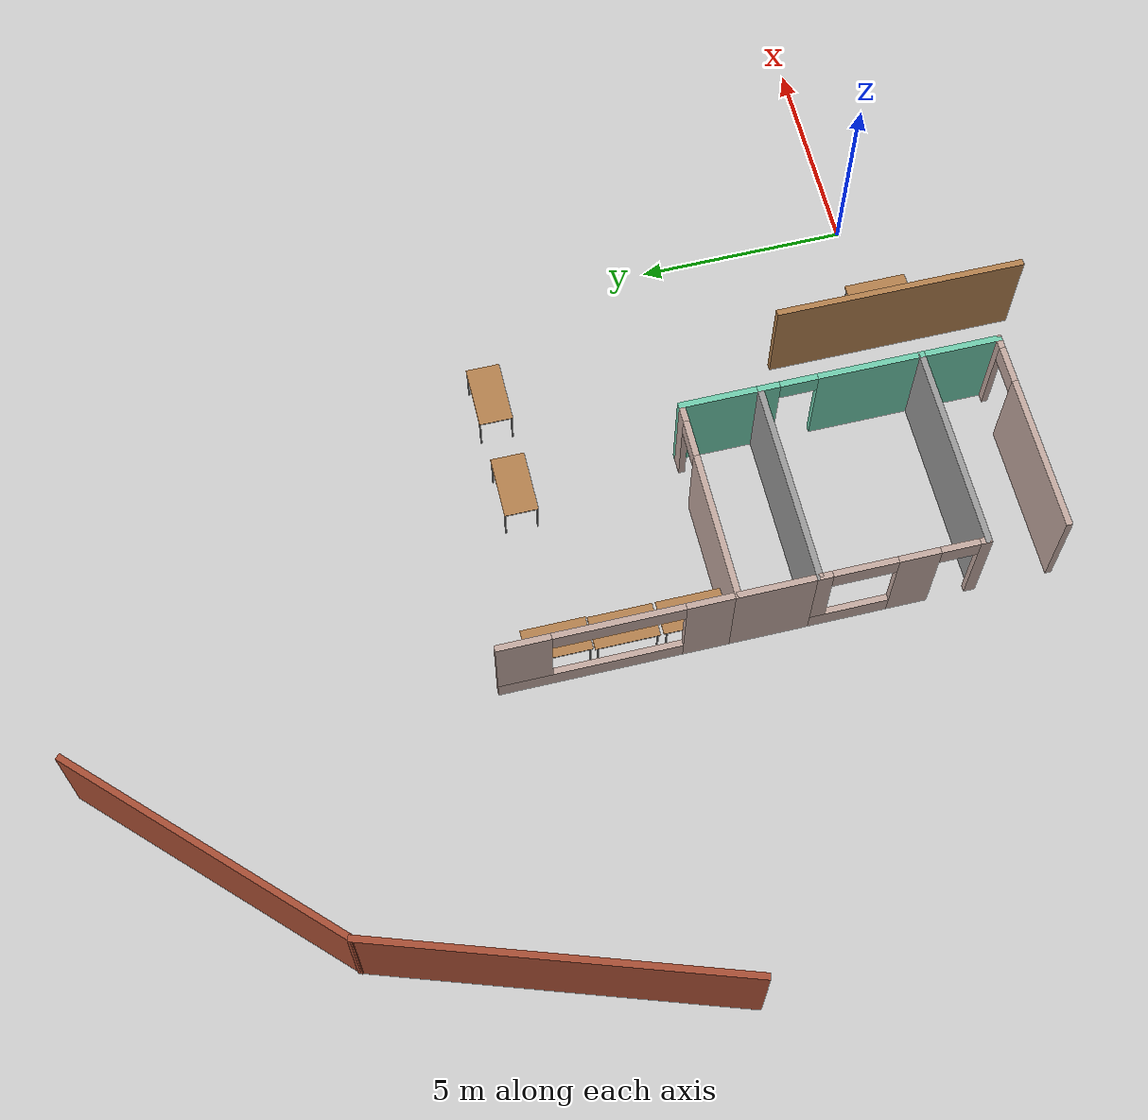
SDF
<sdf version="1.6">
 <world name="default">
  <model name="ground_plane">
   <static>1</static>
   <link name="link">
    <collision name="collision">
     <geometry><plane><normal>0 0 1</normal><size>100 100</size></plane></geometry>
     <surface><friction><ode><mu>100</mu><mu2>50</mu2></ode></friction></surface>
    </collision>
    <visual name="visual">
     <cast_shadows>0</cast_shadows>
     <geometry><plane><normal>0 0 1</normal><size>100 100</size></plane></geometry>
     <material>
      <script><uri>file://media/materials/scripts/gazebo.material</uri><name>Gazebo/Grey</name></script>
     </material>
    </visual>
   </link>
  </model>
  <model name="buildingv2">
   <pose>0.458303 2.11352 0 0 -0 0</pose>
   <link name="Wall_102">
    <collision name="Wall_102_Collision">
     <geometry><box><size>7.5 0.15 2.5</size></box></geometry>
     <pose>0 0 1.25 0 -0 0</pose>
    </collision>
    <visual name="Wall_102_Visual">
     <pose>0 0 1.25 0 -0 0</pose>
     <geometry><box><size>7.5 0.15 2.5</size></box></geometry>
     <material>
      <script><uri>file://media/materials/scripts/gazebo.material</uri><name>Gazebo/Bricks</name></script>
      <ambient>1 1 1 1</ambient>
     </material>
     <meta><layer>0</layer></meta>
    </visual>
    <pose>-13.3137 15.568 0 0 0 -2.35619</pose>
   </link>
   <link name="Wall_103">
    <collision name="Wall_103_Collision">
     <geometry><box><size>8.52644 0.15 2.5</size></box></geometry>
     <pose>0 0 1.25 0 -0 0</pose>
    </collision>
    <visual name="Wall_103_Visual">
     <pose>0 0 1.25 0 -0 0</pose>
     <geometry><box><size>8.52644 0.15 2.5</size></box></geometry>
     <material>
      <script><uri>file://media/materials/scripts/gazebo.material</uri><name>Gazebo/Bricks</name></script>
      <ambient>1 1 1 1</ambient>
     </material>
     <meta><layer>0</layer></meta>
    </visual>
    <pose>-17.2612 9.00429 0 0 0 -1.89871</pose>
   </link>
   <link name="Wall_47">
    <collision name="Wall_47_Collision">
     <geometry><box><size>6 0.15 2.5</size></box></geometry>
     <pose>0 0 1.25 0 -0 0</pose>
    </collision>
    <visual name="Wall_47_Visual">
     <pose>0 0 1.25 0 -0 0</pose>
     <geometry><box><size>6 0.15 2.5</size></box></geometry>
     <material>
      <script><uri>file://media/materials/scripts/gazebo.material</uri><name>Gazebo/Wood</name></script>
      <ambient>1 1 1 1</ambient>
     </material>
     <meta><layer>0</layer></meta>
    </visual>
    <pose>-3.72628 -2.39842 0 0 0 -1.5708</pose>
   </link>
   <link name="Wall_53">
    <collision name="Wall_53_Collision">
     <geometry><box><size>2 0.15 2.5</size></box></geometry>
     <pose>0 0 1.25 0 -0 0</pose>
    </collision>
    <visual name="Wall_53_Visual">
     <pose>0 0 1.25 0 -0 0</pose>
     <geometry><box><size>2 0.15 2.5</size></box></geometry>
     <material>
      <script><uri>file://media/materials/scripts/gazebo.material</uri><name>Gazebo/Grey</name></script>
      <ambient>0.435294 0.796078 0.67451 1</ambient>
     </material>
     <meta><layer>0</layer></meta>
    </visual>
    <pose>-5.57628 2.45158 0 0 -0 1.5708</pose>
   </link>
   <link name="Wall_54">
    <pose>-8.00128 3.37658 0 0 -0 3.14159</pose>
    <visual name="Wall_54_Visual_0">
     <pose>-2.2489 0 1.25 0 -0 0</pose>
     <geometry><box><size>0.502202 0.15 2.5</size></box></geometry>
     <material>
      <script><uri>file://media/materials/scripts/gazebo.material</uri><name>Gazebo/Grey</name></script>
      <ambient>0.760784 0.662745 0.627451 1</ambient>
     </material>
     <meta><layer>0</layer></meta>
    </visual>
    <collision name="Wall_54_Collision_0">
     <geometry><box><size>0.502202 0.15 2.5</size></box></geometry>
     <pose>-2.2489 0 1.25 0 -0 0</pose>
    </collision>
    <visual name="Wall_54_Visual_1">
     <pose>0.701101 0 1.25 0 -0 0</pose>
     <geometry><box><size>3.5978 0.15 2.5</size></box></geometry>
     <material>
      <script><uri>file://media/materials/scripts/gazebo.material</uri><name>Gazebo/Grey</name></script>
      <ambient>0.760784 0.662745 0.627451 1</ambient>
     </material>
     <meta><layer>0</layer></meta>
    </visual>
    <collision name="Wall_54_Collision_1">
     <geometry><box><size>3.5978 0.15 2.5</size></box></geometry>
     <pose>0.701101 0 1.25 0 -0 0</pose>
    </collision>
    <visual name="Wall_54_Visual_2">
     <pose>-1.5478 0 2.25 0 -0 0</pose>
     <geometry><box><size>0.9 0.15 0.5</size></box></geometry>
     <material>
      <script><uri>file://media/materials/scripts/gazebo.material</uri><name>Gazebo/Grey</name></script>
      <ambient>0.760784 0.662745 0.627451 1</ambient>
     </material>
     <meta><layer>0</layer></meta>
    </visual>
    <collision name="Wall_54_Collision_2">
     <geometry><box><size>0.9 0.15 0.5</size></box></geometry>
     <pose>-1.5478 0 2.25 0 -0 0</pose>
    </collision>
   </link>
   <link name="Wall_55">
    <collision name="Wall_55_Collision">
     <geometry><box><size>2 0.15 2.5</size></box></geometry>
     <pose>0 0 1.25 0 -0 0</pose>
    </collision>
    <visual name="Wall_55_Visual">
     <pose>0 0 1.25 0 -0 0</pose>
     <geometry><box><size>2 0.15 2.5</size></box></geometry>
     <material>
      <script><uri>file://media/materials/scripts/gazebo.material</uri><name>Gazebo/Grey</name></script>
      <ambient>0.760784 0.662745 0.627451 1</ambient>
     </material>
     <meta><layer>0</layer></meta>
    </visual>
    <pose>-10.4263 2.45158 0 0 0 -1.5708</pose>
   </link>
   <link name="Wall_56">
    <collision name="Wall_56_Collision">
     <geometry><box><size>5 0.15 2.5</size></box></geometry>
     <pose>0 0 1.25 0 -0 0</pose>
    </collision>
    <visual name="Wall_56_Visual">
     <pose>0 0 1.25 0 -0 0</pose>
     <geometry><box><size>5 0.15 2.5</size></box></geometry>
     <material>
      <script><uri>file://media/materials/scripts/gazebo.material</uri><name>Gazebo/Grey</name></script>
      <ambient>1 1 1 1</ambient>
     </material>
     <meta><layer>0</layer></meta>
    </visual>
    <pose>-8.00128 1.52658 0 0 -0 0</pose>
   </link>
   <link name="Wall_57">
    <pose>-5.57628 -0.398423 0 0 0 -1.5708</pose>
    <visual name="Wall_57_Visual_0">
     <pose>-1.72998 0 1.25 0 -0 0</pose>
     <geometry><box><size>0.54004 0.15 2.5</size></box></geometry>
     <material>
      <script><uri>file://media/materials/scripts/gazebo.material</uri><name>Gazebo/Grey</name></script>
      <ambient>0.435294 0.796078 0.67451 1</ambient>
     </material>
     <meta><layer>0</layer></meta>
    </visual>
    <collision name="Wall_57_Collision_0">
     <geometry><box><size>0.54004 0.15 2.5</size></box></geometry>
     <pose>-1.72998 0 1.25 0 -0 0</pose>
    </collision>
    <visual name="Wall_57_Visual_1">
     <pose>0.72002 0 1.25 0 -0 0</pose>
     <geometry><box><size>2.55996 0.15 2.5</size></box></geometry>
     <material>
      <script><uri>file://media/materials/scripts/gazebo.material</uri><name>Gazebo/Grey</name></script>
      <ambient>0.435294 0.796078 0.67451 1</ambient>
     </material>
     <meta><layer>0</layer></meta>
    </visual>
    <collision name="Wall_57_Collision_1">
     <geometry><box><size>2.55996 0.15 2.5</size></box></geometry>
     <pose>0.72002 0 1.25 0 -0 0</pose>
    </collision>
    <visual name="Wall_57_Visual_2">
     <pose>-1.00996 0 2.25 0 -0 0</pose>
     <geometry><box><size>0.9 0.15 0.5</size></box></geometry>
     <material>
      <script><uri>file://media/materials/scripts/gazebo.material</uri><name>Gazebo/Grey</name></script>
      <ambient>0.435294 0.796078 0.67451 1</ambient>
     </material>
     <meta><layer>0</layer></meta>
    </visual>
    <collision name="Wall_57_Collision_2">
     <geometry><box><size>0.9 0.15 0.5</size></box></geometry>
     <pose>-1.00996 0 2.25 0 -0 0</pose>
    </collision>
   </link>
   <link name="Wall_58">
    <collision name="Wall_58_Collision">
     <geometry><box><size>5 0.15 2.5</size></box></geometry>
     <pose>0 0 1.25 0 -0 0</pose>
    </collision>
    <visual name="Wall_58_Visual">
     <pose>0 0 1.25 0 -0 0</pose>
     <geometry><box><size>5 0.15 2.5</size></box></geometry>
     <material>
      <script><uri>file://media/materials/scripts/gazebo.material</uri><name>Gazebo/Grey</name></script>
      <ambient>1 1 1 1</ambient>
     </material>
     <meta><layer>0</layer></meta>
    </visual>
    <pose>-8.00128 -2.32342 0 0 -0 3.14159</pose>
   </link>
   <link name="Wall_59">
    <pose>-10.4263 -0.398423 0 0 -0 1.5708</pose>
    <visual name="Wall_59_Visual_0">
     <pose>-1.86607 0 1.25 0 -0 0</pose>
     <geometry><box><size>0.267859 0.15 2.5</size></box></geometry>
     <material>
      <script><uri>file://media/materials/scripts/gazebo.material</uri><name>Gazebo/Grey</name></script>
      <ambient>0.760784 0.662745 0.627451 1</ambient>
     </material>
     <meta><layer>0</layer></meta>
    </visual>
    <collision name="Wall_59_Collision_0">
     <geometry><box><size>0.267859 0.15 2.5</size></box></geometry>
     <pose>-1.86607 0 1.25 0 -0 0</pose>
    </collision>
    <visual name="Wall_59_Visual_1">
     <pose>-0.347691 0 1.25 0 -0 0</pose>
     <geometry><box><size>0.9689 0.15 2.5</size></box></geometry>
     <material>
      <script><uri>file://media/materials/scripts/gazebo.material</uri><name>Gazebo/Grey</name></script>
      <ambient>0.760784 0.662745 0.627451 1</ambient>
     </material>
     <meta><layer>0</layer></meta>
    </visual>
    <collision name="Wall_59_Collision_1">
     <geometry><box><size>0.9689 0.15 2.5</size></box></geometry>
     <pose>-0.347691 0 1.25 0 -0 0</pose>
    </collision>
    <visual name="Wall_59_Visual_2">
     <pose>1.06838 0 0.25 0 -0 0</pose>
     <geometry><box><size>1.86324 0.15 0.5</size></box></geometry>
     <material>
      <script><uri>file://media/materials/scripts/gazebo.material</uri><name>Gazebo/Grey</name></script>
      <ambient>0.760784 0.662745 0.627451 1</ambient>
     </material>
     <meta><layer>0</layer></meta>
    </visual>
    <collision name="Wall_59_Collision_2">
     <geometry><box><size>1.86324 0.15 0.5</size></box></geometry>
     <pose>1.06838 0 0.25 0 -0 0</pose>
    </collision>
    <visual name="Wall_59_Visual_3">
     <pose>1.81838 0 1.5 0 -0 0</pose>
     <geometry><box><size>0.363241 0.15 2</size></box></geometry>
     <material>
      <script><uri>file://media/materials/scripts/gazebo.material</uri><name>Gazebo/Grey</name></script>
      <ambient>0.760784 0.662745 0.627451 1</ambient>
     </material>
     <meta><layer>0</layer></meta>
    </visual>
    <collision name="Wall_59_Collision_3">
     <geometry><box><size>0.363241 0.15 2</size></box></geometry>
     <pose>1.81838 0 1.5 0 -0 0</pose>
    </collision>
    <visual name="Wall_59_Visual_4">
     <pose>-1.28214 0 2.25 0 -0 0</pose>
     <geometry><box><size>0.9 0.15 0.5</size></box></geometry>
     <material>
      <script><uri>file://media/materials/scripts/gazebo.material</uri><name>Gazebo/Grey</name></script>
      <ambient>0.760784 0.662745 0.627451 1</ambient>
     </material>
     <meta><layer>0</layer></meta>
    </visual>
    <collision name="Wall_59_Collision_4">
     <geometry><box><size>0.9 0.15 0.5</size></box></geometry>
     <pose>-1.28214 0 2.25 0 -0 0</pose>
    </collision>
    <visual name="Wall_59_Visual_5">
     <pose>0.886759 0 2.25 0 -0 0</pose>
     <geometry><box><size>1.5 0.15 0.5</size></box></geometry>
     <material>
      <script><uri>file://media/materials/scripts/gazebo.material</uri><name>Gazebo/Grey</name></script>
      <ambient>0.760784 0.662745 0.627451 1</ambient>
     </material>
     <meta><layer>0</layer></meta>
    </visual>
    <collision name="Wall_59_Collision_5">
     <geometry><box><size>1.5 0.15 0.5</size></box></geometry>
     <pose>0.886759 0 2.25 0 -0 0</pose>
    </collision>
   </link>
   <link name="Wall_86">
    <collision name="Wall_86_Collision">
     <geometry><box><size>2 0.15 2.5</size></box></geometry>
     <pose>0 0 1.25 0 -0 0</pose>
    </collision>
    <visual name="Wall_86_Visual">
     <pose>0 0 1.25 0 -0 0</pose>
     <geometry><box><size>2 0.15 2.5</size></box></geometry>
     <material>
      <script><uri>file://media/materials/scripts/gazebo.material</uri><name>Gazebo/Grey</name></script>
      <ambient>0.435294 0.796078 0.67451 1</ambient>
     </material>
     <meta><layer>0</layer></meta>
    </visual>
    <pose>-5.57628 -3.24842 0 0 0 -1.5708</pose>
   </link>
   <link name="Wall_87">
    <pose>-8.00128 -4.17342 0 0 -0 3.14159</pose>
    <visual name="Wall_87_Visual_0">
     <pose>-2.3305 0 1.25 0 -0 0</pose>
     <geometry><box><size>0.339006 0.15 2.5</size></box></geometry>
     <material>
      <script><uri>file://media/materials/scripts/gazebo.material</uri><name>Gazebo/Grey</name></script>
      <ambient>0.760784 0.662745 0.627451 1</ambient>
     </material>
     <meta><layer>0</layer></meta>
    </visual>
    <collision name="Wall_87_Collision_0">
     <geometry><box><size>0.339006 0.15 2.5</size></box></geometry>
     <pose>-2.3305 0 1.25 0 -0 0</pose>
    </collision>
    <visual name="Wall_87_Visual_1">
     <pose>0.619503 0 1.25 0 -0 0</pose>
     <geometry><box><size>3.76099 0.15 2.5</size></box></geometry>
     <material>
      <script><uri>file://media/materials/scripts/gazebo.material</uri><name>Gazebo/Grey</name></script>
      <ambient>0.760784 0.662745 0.627451 1</ambient>
     </material>
     <meta><layer>0</layer></meta>
    </visual>
    <collision name="Wall_87_Collision_1">
     <geometry><box><size>3.76099 0.15 2.5</size></box></geometry>
     <pose>0.619503 0 1.25 0 -0 0</pose>
    </collision>
    <visual name="Wall_87_Visual_2">
     <pose>-1.71099 0 2.25 0 -0 0</pose>
     <geometry><box><size>0.9 0.15 0.5</size></box></geometry>
     <material>
      <script><uri>file://media/materials/scripts/gazebo.material</uri><name>Gazebo/Grey</name></script>
      <ambient>0.760784 0.662745 0.627451 1</ambient>
     </material>
     <meta><layer>0</layer></meta>
    </visual>
    <collision name="Wall_87_Collision_2">
     <geometry><box><size>0.9 0.15 0.5</size></box></geometry>
     <pose>-1.71099 0 2.25 0 -0 0</pose>
    </collision>
   </link>
   <link name="Wall_95">
    <pose>-10.4263 6.05158 0 0 -0 1.5708</pose>
    <visual name="Wall_95_Visual_0">
     <pose>-2.12974 0 1.25 0 -0 0</pose>
     <geometry><box><size>1.24051 0.15 2.5</size></box></geometry>
     <material>
      <script><uri>file://media/materials/scripts/gazebo.material</uri><name>Gazebo/Grey</name></script>
      <ambient>0.760784 0.662745 0.627451 1</ambient>
     </material>
     <meta><layer>0</layer></meta>
    </visual>
    <collision name="Wall_95_Collision_0">
     <geometry><box><size>1.24051 0.15 2.5</size></box></geometry>
     <pose>-2.12974 0 1.25 0 -0 0</pose>
    </collision>
    <visual name="Wall_95_Visual_1">
     <pose>0.620257 0 0.25 0 -0 0</pose>
     <geometry><box><size>4.25949 0.15 0.5</size></box></geometry>
     <material>
      <script><uri>file://media/materials/scripts/gazebo.material</uri><name>Gazebo/Grey</name></script>
      <ambient>0.760784 0.662745 0.627451 1</ambient>
     </material>
     <meta><layer>0</layer></meta>
    </visual>
    <collision name="Wall_95_Collision_1">
     <geometry><box><size>4.25949 0.15 0.5</size></box></geometry>
     <pose>0.620257 0 0.25 0 -0 0</pose>
    </collision>
    <visual name="Wall_95_Visual_2">
     <pose>2.12026 0 1.5 0 -0 0</pose>
     <geometry><box><size>1.25949 0.15 2</size></box></geometry>
     <material>
      <script><uri>file://media/materials/scripts/gazebo.material</uri><name>Gazebo/Grey</name></script>
      <ambient>0.760784 0.662745 0.627451 1</ambient>
     </material>
     <meta><layer>0</layer></meta>
    </visual>
    <collision name="Wall_95_Collision_2">
     <geometry><box><size>1.25949 0.15 2</size></box></geometry>
     <pose>2.12026 0 1.5 0 -0 0</pose>
    </collision>
    <visual name="Wall_95_Visual_3">
     <pose>-0.009486 0 2.25 0 -0 0</pose>
     <geometry><box><size>3 0.15 0.5</size></box></geometry>
     <material>
      <script><uri>file://media/materials/scripts/gazebo.material</uri><name>Gazebo/Grey</name></script>
      <ambient>0.760784 0.662745 0.627451 1</ambient>
     </material>
     <meta><layer>0</layer></meta>
    </visual>
    <collision name="Wall_95_Collision_3">
     <geometry><box><size>3 0.15 0.5</size></box></geometry>
     <pose>-0.009486 0 2.25 0 -0 0</pose>
    </collision>
   </link>
   <static>1</static>
  </model>
  <model name="cabinet">
   <static>1</static>
   <link name="cabinet_bottom_plate">
    <inertial>
     <pose>0 0 -1 0 -0 0</pose>
     <inertia><ixx>2.05</ixx><ixy>0</ixy><ixz>0</ixz><iyy>2.05</iyy><iyz>0</iyz><izz>2.05</izz></inertia>
     <mass>25</mass>
    </inertial>
    <collision name="cabinet_bottom_plate_geom">
     <pose>0 0 0.01 0 -0 0</pose>
     <geometry><box><size>0.45 0.45 0.02</size></box></geometry>
    </collision>
    <visual name="cabinet_bottom_plate_geom_visual">
     <pose>0 0 0.01 0 -0 0</pose>
     <geometry><box><size>0.45 0.45 0.02</size></box></geometry>
     <material>
      <script><uri>file://media/materials/scripts/gazebo.material</uri><name>Gazebo/Wood</name></script>
     </material>
    </visual>
    <collision name="cabinet_bottom_plate_geom_cabinet_back_plate">
     <pose>0.235 0 0.51 0 -0 0</pose>
     <geometry><box><size>0.02 0.45 1.02</size></box></geometry>
    </collision>
    <visual name="cabinet_bottom_plate_geom_cabinet_back_plate_visual">
     <pose>0.235 0 0.51 0 -0 0</pose>
     <geometry><box><size>0.02 0.45 1.02</size></box></geometry>
     <material>
      <script><uri>file://media/materials/scripts/gazebo.material</uri><name>Gazebo/Wood</name></script>
     </material>
    </visual>
    <collision name="cabinet_bottom_plate_geom_cabinet_left_plate">
     <pose>0 0.235 0.51 0 -0 0</pose>
     <geometry><box><size>0.45 0.02 1.02</size></box></geometry>
    </collision>
    <visual name="cabinet_bottom_plate_geom_cabinet_left_plate_visual">
     <pose>0 0.235 0.51 0 -0 0</pose>
     <geometry><box><size>0.45 0.02 1.02</size></box></geometry>
     <material>
      <script><uri>file://media/materials/scripts/gazebo.material</uri><name>Gazebo/Wood</name></script>
     </material>
    </visual>
    <collision name="cabinet_bottom_plate_geom_cabinet_middle_plate">
     <pose>0 0 0.51 0 -0 0</pose>
     <geometry><box><size>0.45 0.45 0.02</size></box></geometry>
    </collision>
    <visual name="cabinet_bottom_plate_geom_cabinet_middle_plate_visual">
     <pose>0 0 0.51 0 -0 0</pose>
     <geometry><box><size>0.45 0.45 0.02</size></box></geometry>
     <material>
      <script><uri>file://media/materials/scripts/gazebo.material</uri><name>Gazebo/Wood</name></script>
     </material>
    </visual>
    <collision name="cabinet_bottom_plate_geom_cabinet_right_plate">
     <pose>0 -0.235 0.51 0 -0 0</pose>
     <geometry><box><size>0.45 0.02 1.02</size></box></geometry>
    </collision>
    <visual name="cabinet_bottom_plate_geom_cabinet_right_plate_visual">
     <pose>0 -0.235 0.51 0 -0 0</pose>
     <geometry><box><size>0.45 0.02 1.02</size></box></geometry>
     <material>
      <script><uri>file://media/materials/scripts/gazebo.material</uri><name>Gazebo/Wood</name></script>
     </material>
    </visual>
    <collision name="cabinet_bottom_plate_geom_cabinet_top_plate">
     <pose>0 0 1.01 0 -0 0</pose>
     <geometry><box><size>0.45 0.45 0.02</size></box></geometry>
    </collision>
    <visual name="cabinet_bottom_plate_geom_cabinet_top_plate_visual">
     <pose>0 0 1.01 0 -0 0</pose>
     <geometry><box><size>0.45 0.45 0.02</size></box></geometry>
     <material>
      <script><uri>file://media/materials/scripts/gazebo.material</uri><name>Gazebo/Wood</name></script>
     </material>
    </visual>
   </link>
   <pose>-9.56444 5.15542 0 0 0 -3.13836</pose>
  </model>
  <model name="table_0">
   <static>1</static>
   <link name="link">
    <collision name="surface">
     <pose>0 0 1 0 -0 0</pose>
     <geometry><box><size>1.5 0.8 0.03</size></box></geometry>
     <surface><friction><ode><mu>0.6</mu><mu2>0.6</mu2></ode></friction></surface>
    </collision>
    <visual name="visual1">
     <pose>0 0 1 0 -0 0</pose>
     <geometry><box><size>1.5 0.8 0.03</size></box></geometry>
     <material>
      <script><uri>file://media/materials/scripts/gazebo.material</uri><name>Gazebo/Wood</name></script>
     </material>
    </visual>
    <collision name="front_left_leg">
     <pose>0.68 0.38 0.5 0 -0 0</pose>
     <geometry><cylinder><radius>0.02</radius><length>1</length></cylinder></geometry>
    </collision>
    <visual name="front_left_leg">
     <pose>0.68 0.38 0.5 0 -0 0</pose>
     <geometry><cylinder><radius>0.02</radius><length>1</length></cylinder></geometry>
     <material>
      <script><uri>file://media/materials/scripts/gazebo.material</uri><name>Gazebo/Grey</name></script>
     </material>
    </visual>
    <collision name="front_right_leg">
     <pose>0.68 -0.38 0.5 0 -0 0</pose>
     <geometry><cylinder><radius>0.02</radius><length>1</length></cylinder></geometry>
    </collision>
    <visual name="front_right_leg">
     <pose>0.68 -0.38 0.5 0 -0 0</pose>
     <geometry><cylinder><radius>0.02</radius><length>1</length></cylinder></geometry>
     <material>
      <script><uri>file://media/materials/scripts/gazebo.material</uri><name>Gazebo/Grey</name></script>
     </material>
    </visual>
    <collision name="back_right_leg">
     <pose>-0.68 -0.38 0.5 0 -0 0</pose>
     <geometry><cylinder><radius>0.02</radius><length>1</length></cylinder></geometry>
    </collision>
    <visual name="back_right_leg">
     <pose>-0.68 -0.38 0.5 0 -0 0</pose>
     <geometry><cylinder><radius>0.02</radius><length>1</length></cylinder></geometry>
     <material>
      <script><uri>file://media/materials/scripts/gazebo.material</uri><name>Gazebo/Grey</name></script>
     </material>
    </visual>
    <collision name="back_left_leg">
     <pose>-0.68 0.38 0.5 0 -0 0</pose>
     <geometry><cylinder><radius>0.02</radius><length>1</length></cylinder></geometry>
    </collision>
    <visual name="back_left_leg">
     <pose>-0.68 0.38 0.5 0 -0 0</pose>
     <geometry><cylinder><radius>0.02</radius><length>1</length></cylinder></geometry>
     <material>
      <script><uri>file://media/materials/scripts/gazebo.material</uri><name>Gazebo/Grey</name></script>
     </material>
    </visual>
   </link>
   <pose>-9.48358 6.32927 0 0 -0 1.56891</pose>
  </model>
  <model name="table_1">
   <static>1</static>
   <link name="link">
    <collision name="surface">
     <pose>0 0 1 0 -0 0</pose>
     <geometry><box><size>1.5 0.8 0.03</size></box></geometry>
     <surface><friction><ode><mu>0.6</mu><mu2>0.6</mu2></ode></friction></surface>
    </collision>
    <visual name="visual1">
     <pose>0 0 1 0 -0 0</pose>
     <geometry><box><size>1.5 0.8 0.03</size></box></geometry>
     <material>
      <script><uri>file://media/materials/scripts/gazebo.material</uri><name>Gazebo/Wood</name></script>
     </material>
    </visual>
    <collision name="front_left_leg">
     <pose>0.68 0.38 0.5 0 -0 0</pose>
     <geometry><cylinder><radius>0.02</radius><length>1</length></cylinder></geometry>
    </collision>
    <visual name="front_left_leg">
     <pose>0.68 0.38 0.5 0 -0 0</pose>
     <geometry><cylinder><radius>0.02</radius><length>1</length></cylinder></geometry>
     <material>
      <script><uri>file://media/materials/scripts/gazebo.material</uri><name>Gazebo/Grey</name></script>
     </material>
    </visual>
    <collision name="front_right_leg">
     <pose>0.68 -0.38 0.5 0 -0 0</pose>
     <geometry><cylinder><radius>0.02</radius><length>1</length></cylinder></geometry>
    </collision>
    <visual name="front_right_leg">
     <pose>0.68 -0.38 0.5 0 -0 0</pose>
     <geometry><cylinder><radius>0.02</radius><length>1</length></cylinder></geometry>
     <material>
      <script><uri>file://media/materials/scripts/gazebo.material</uri><name>Gazebo/Grey</name></script>
     </material>
    </visual>
    <collision name="back_right_leg">
     <pose>-0.68 -0.38 0.5 0 -0 0</pose>
     <geometry><cylinder><radius>0.02</radius><length>1</length></cylinder></geometry>
    </collision>
    <visual name="back_right_leg">
     <pose>-0.68 -0.38 0.5 0 -0 0</pose>
     <geometry><cylinder><radius>0.02</radius><length>1</length></cylinder></geometry>
     <material>
      <script><uri>file://media/materials/scripts/gazebo.material</uri><name>Gazebo/Grey</name></script>
     </material>
    </visual>
    <collision name="back_left_leg">
     <pose>-0.68 0.38 0.5 0 -0 0</pose>
     <geometry><cylinder><radius>0.02</radius><length>1</length></cylinder></geometry>
    </collision>
    <visual name="back_left_leg">
     <pose>-0.68 0.38 0.5 0 -0 0</pose>
     <geometry><cylinder><radius>0.02</radius><length>1</length></cylinder></geometry>
     <material>
      <script><uri>file://media/materials/scripts/gazebo.material</uri><name>Gazebo/Grey</name></script>
     </material>
    </visual>
   </link>
   <pose>-5.44601 9.48468 0 0 -0 0</pose>
  </model>
  <model name="table">
   <static>1</static>
   <link name="link">
    <collision name="surface">
     <pose>0 0 1 0 -0 0</pose>
     <geometry><box><size>1.5 0.8 0.03</size></box></geometry>
     <surface><friction><ode><mu>0.6</mu><mu2>0.6</mu2></ode></friction></surface>
    </collision>
    <visual name="visual1">
     <pose>0 0 1 0 -0 0</pose>
     <geometry><box><size>1.5 0.8 0.03</size></box></geometry>
     <material>
      <script><uri>file://media/materials/scripts/gazebo.material</uri><name>Gazebo/Wood</name></script>
     </material>
    </visual>
    <collision name="front_left_leg">
     <pose>0.68 0.38 0.5 0 -0 0</pose>
     <geometry><cylinder><radius>0.02</radius><length>1</length></cylinder></geometry>
    </collision>
    <visual name="front_left_leg">
     <pose>0.68 0.38 0.5 0 -0 0</pose>
     <geometry><cylinder><radius>0.02</radius><length>1</length></cylinder></geometry>
     <material>
      <script><uri>file://media/materials/scripts/gazebo.material</uri><name>Gazebo/Grey</name></script>
     </material>
    </visual>
    <collision name="front_right_leg">
     <pose>0.68 -0.38 0.5 0 -0 0</pose>
     <geometry><cylinder><radius>0.02</radius><length>1</length></cylinder></geometry>
    </collision>
    <visual name="front_right_leg">
     <pose>0.68 -0.38 0.5 0 -0 0</pose>
     <geometry><cylinder><radius>0.02</radius><length>1</length></cylinder></geometry>
     <material>
      <script><uri>file://media/materials/scripts/gazebo.material</uri><name>Gazebo/Grey</name></script>
     </material>
    </visual>
    <collision name="back_right_leg">
     <pose>-0.68 -0.38 0.5 0 -0 0</pose>
     <geometry><cylinder><radius>0.02</radius><length>1</length></cylinder></geometry>
    </collision>
    <visual name="back_right_leg">
     <pose>-0.68 -0.38 0.5 0 -0 0</pose>
     <geometry><cylinder><radius>0.02</radius><length>1</length></cylinder></geometry>
     <material>
      <script><uri>file://media/materials/scripts/gazebo.material</uri><name>Gazebo/Grey</name></script>
     </material>
    </visual>
    <collision name="back_left_leg">
     <pose>-0.68 0.38 0.5 0 -0 0</pose>
     <geometry><cylinder><radius>0.02</radius><length>1</length></cylinder></geometry>
    </collision>
    <visual name="back_left_leg">
     <pose>-0.68 0.38 0.5 0 -0 0</pose>
     <geometry><cylinder><radius>0.02</radius><length>1</length></cylinder></geometry>
     <material>
      <script><uri>file://media/materials/scripts/gazebo.material</uri><name>Gazebo/Grey</name></script>
     </material>
    </visual>
   </link>
   <pose>-2.99045 9.5315 0 0 -0 0</pose>
  </model>
  <model name="cabinet_clone">
   <static>1</static>
   <link name="cabinet_bottom_plate">
    <inertial>
     <pose>0 0 -1 0 -0 0</pose>
     <inertia><ixx>2.05</ixx><ixy>0</ixy><ixz>0</ixz><iyy>2.05</iyy><iyz>0</iyz><izz>2.05</izz></inertia>
     <mass>25</mass>
    </inertial>
    <collision name="cabinet_bottom_plate_geom">
     <pose>0 0 0.01 0 -0 0</pose>
     <geometry><box><size>0.45 0.45 0.02</size></box></geometry>
    </collision>
    <visual name="cabinet_bottom_plate_geom_visual">
     <pose>0 0 0.01 0 -0 0</pose>
     <geometry><box><size>0.45 0.45 0.02</size></box></geometry>
     <material>
      <script><uri>file://media/materials/scripts/gazebo.material</uri><name>Gazebo/Wood</name></script>
     </material>
    </visual>
    <collision name="cabinet_bottom_plate_geom_cabinet_back_plate">
     <pose>0.235 0 0.51 0 -0 0</pose>
     <geometry><box><size>0.02 0.45 1.02</size></box></geometry>
    </collision>
    <visual name="cabinet_bottom_plate_geom_cabinet_back_plate_visual">
     <pose>0.235 0 0.51 0 -0 0</pose>
     <geometry><box><size>0.02 0.45 1.02</size></box></geometry>
     <material>
      <script><uri>file://media/materials/scripts/gazebo.material</uri><name>Gazebo/Wood</name></script>
     </material>
    </visual>
    <collision name="cabinet_bottom_plate_geom_cabinet_left_plate">
     <pose>0 0.235 0.51 0 -0 0</pose>
     <geometry><box><size>0.45 0.02 1.02</size></box></geometry>
    </collision>
    <visual name="cabinet_bottom_plate_geom_cabinet_left_plate_visual">
     <pose>0 0.235 0.51 0 -0 0</pose>
     <geometry><box><size>0.45 0.02 1.02</size></box></geometry>
     <material>
      <script><uri>file://media/materials/scripts/gazebo.material</uri><name>Gazebo/Wood</name></script>
     </material>
    </visual>
    <collision name="cabinet_bottom_plate_geom_cabinet_middle_plate">
     <pose>0 0 0.51 0 -0 0</pose>
     <geometry><box><size>0.45 0.45 0.02</size></box></geometry>
    </collision>
    <visual name="cabinet_bottom_plate_geom_cabinet_middle_plate_visual">
     <pose>0 0 0.51 0 -0 0</pose>
     <geometry><box><size>0.45 0.45 0.02</size></box></geometry>
     <material>
      <script><uri>file://media/materials/scripts/gazebo.material</uri><name>Gazebo/Wood</name></script>
     </material>
    </visual>
    <collision name="cabinet_bottom_plate_geom_cabinet_right_plate">
     <pose>0 -0.235 0.51 0 -0 0</pose>
     <geometry><box><size>0.45 0.02 1.02</size></box></geometry>
    </collision>
    <visual name="cabinet_bottom_plate_geom_cabinet_right_plate_visual">
     <pose>0 -0.235 0.51 0 -0 0</pose>
     <geometry><box><size>0.45 0.02 1.02</size></box></geometry>
     <material>
      <script><uri>file://media/materials/scripts/gazebo.material</uri><name>Gazebo/Wood</name></script>
     </material>
    </visual>
    <collision name="cabinet_bottom_plate_geom_cabinet_top_plate">
     <pose>0 0 1.01 0 -0 0</pose>
     <geometry><box><size>0.45 0.45 0.02</size></box></geometry>
    </collision>
    <visual name="cabinet_bottom_plate_geom_cabinet_top_plate_visual">
     <pose>0 0 1.01 0 -0 0</pose>
     <geometry><box><size>0.45 0.45 0.02</size></box></geometry>
     <material>
      <script><uri>file://media/materials/scripts/gazebo.material</uri><name>Gazebo/Wood</name></script>
     </material>
    </visual>
   </link>
   <pose>-9.57088 4.66636 0 0 0 -3.13836</pose>
  </model>
  <model name="cabinet_clone_0">
   <static>1</static>
   <link name="cabinet_bottom_plate">
    <inertial>
     <pose>0 0 -1 0 -0 0</pose>
     <inertia><ixx>2.05</ixx><ixy>0</ixy><ixz>0</ixz><iyy>2.05</iyy><iyz>0</iyz><izz>2.05</izz></inertia>
     <mass>25</mass>
    </inertial>
    <collision name="cabinet_bottom_plate_geom">
     <pose>0 0 0.01 0 -0 0</pose>
     <geometry><box><size>0.45 0.45 0.02</size></box></geometry>
    </collision>
    <visual name="cabinet_bottom_plate_geom_visual">
     <pose>0 0 0.01 0 -0 0</pose>
     <geometry><box><size>0.45 0.45 0.02</size></box></geometry>
     <material>
      <script><uri>file://media/materials/scripts/gazebo.material</uri><name>Gazebo/Wood</name></script>
     </material>
    </visual>
    <collision name="cabinet_bottom_plate_geom_cabinet_back_plate">
     <pose>0.235 0 0.51 0 -0 0</pose>
     <geometry><box><size>0.02 0.45 1.02</size></box></geometry>
    </collision>
    <visual name="cabinet_bottom_plate_geom_cabinet_back_plate_visual">
     <pose>0.235 0 0.51 0 -0 0</pose>
     <geometry><box><size>0.02 0.45 1.02</size></box></geometry>
     <material>
      <script><uri>file://media/materials/scripts/gazebo.material</uri><name>Gazebo/Wood</name></script>
     </material>
    </visual>
    <collision name="cabinet_bottom_plate_geom_cabinet_left_plate">
     <pose>0 0.235 0.51 0 -0 0</pose>
     <geometry><box><size>0.45 0.02 1.02</size></box></geometry>
    </collision>
    <visual name="cabinet_bottom_plate_geom_cabinet_left_plate_visual">
     <pose>0 0.235 0.51 0 -0 0</pose>
     <geometry><box><size>0.45 0.02 1.02</size></box></geometry>
     <material>
      <script><uri>file://media/materials/scripts/gazebo.material</uri><name>Gazebo/Wood</name></script>
     </material>
    </visual>
    <collision name="cabinet_bottom_plate_geom_cabinet_middle_plate">
     <pose>0 0 0.51 0 -0 0</pose>
     <geometry><box><size>0.45 0.45 0.02</size></box></geometry>
    </collision>
    <visual name="cabinet_bottom_plate_geom_cabinet_middle_plate_visual">
     <pose>0 0 0.51 0 -0 0</pose>
     <geometry><box><size>0.45 0.45 0.02</size></box></geometry>
     <material>
      <script><uri>file://media/materials/scripts/gazebo.material</uri><name>Gazebo/Wood</name></script>
     </material>
    </visual>
    <collision name="cabinet_bottom_plate_geom_cabinet_right_plate">
     <pose>0 -0.235 0.51 0 -0 0</pose>
     <geometry><box><size>0.45 0.02 1.02</size></box></geometry>
    </collision>
    <visual name="cabinet_bottom_plate_geom_cabinet_right_plate_visual">
     <pose>0 -0.235 0.51 0 -0 0</pose>
     <geometry><box><size>0.45 0.02 1.02</size></box></geometry>
     <material>
      <script><uri>file://media/materials/scripts/gazebo.material</uri><name>Gazebo/Wood</name></script>
     </material>
    </visual>
    <collision name="cabinet_bottom_plate_geom_cabinet_top_plate">
     <pose>0 0 1.01 0 -0 0</pose>
     <geometry><box><size>0.45 0.45 0.02</size></box></geometry>
    </collision>
    <visual name="cabinet_bottom_plate_geom_cabinet_top_plate_visual">
     <pose>0 0 1.01 0 -0 0</pose>
     <geometry><box><size>0.45 0.45 0.02</size></box></geometry>
     <material>
      <script><uri>file://media/materials/scripts/gazebo.material</uri><name>Gazebo/Wood</name></script>
     </material>
    </visual>
   </link>
   <pose>-9.56283 4.18862 0 0 0 -3.13836</pose>
  </model>
  <model name="table_0_clone">
   <static>1</static>
   <link name="link">
    <collision name="surface">
     <pose>0 0 1 0 -0 0</pose>
     <geometry><box><size>1.5 0.8 0.03</size></box></geometry>
     <surface><friction><ode><mu>0.6</mu><mu2>0.6</mu2></ode></friction></surface>
    </collision>
    <visual name="visual1">
     <pose>0 0 1 0 -0 0</pose>
     <geometry><box><size>1.5 0.8 0.03</size></box></geometry>
     <material>
      <script><uri>file://media/materials/scripts/gazebo.material</uri><name>Gazebo/Wood</name></script>
     </material>
    </visual>
    <collision name="front_left_leg">
     <pose>0.68 0.38 0.5 0 -0 0</pose>
     <geometry><cylinder><radius>0.02</radius><length>1</length></cylinder></geometry>
    </collision>
    <visual name="front_left_leg">
     <pose>0.68 0.38 0.5 0 -0 0</pose>
     <geometry><cylinder><radius>0.02</radius><length>1</length></cylinder></geometry>
     <material>
      <script><uri>file://media/materials/scripts/gazebo.material</uri><name>Gazebo/Grey</name></script>
     </material>
    </visual>
    <collision name="front_right_leg">
     <pose>0.68 -0.38 0.5 0 -0 0</pose>
     <geometry><cylinder><radius>0.02</radius><length>1</length></cylinder></geometry>
    </collision>
    <visual name="front_right_leg">
     <pose>0.68 -0.38 0.5 0 -0 0</pose>
     <geometry><cylinder><radius>0.02</radius><length>1</length></cylinder></geometry>
     <material>
      <script><uri>file://media/materials/scripts/gazebo.material</uri><name>Gazebo/Grey</name></script>
     </material>
    </visual>
    <collision name="back_right_leg">
     <pose>-0.68 -0.38 0.5 0 -0 0</pose>
     <geometry><cylinder><radius>0.02</radius><length>1</length></cylinder></geometry>
    </collision>
    <visual name="back_right_leg">
     <pose>-0.68 -0.38 0.5 0 -0 0</pose>
     <geometry><cylinder><radius>0.02</radius><length>1</length></cylinder></geometry>
     <material>
      <script><uri>file://media/materials/scripts/gazebo.material</uri><name>Gazebo/Grey</name></script>
     </material>
    </visual>
    <collision name="back_left_leg">
     <pose>-0.68 0.38 0.5 0 -0 0</pose>
     <geometry><cylinder><radius>0.02</radius><length>1</length></cylinder></geometry>
    </collision>
    <visual name="back_left_leg">
     <pose>-0.68 0.38 0.5 0 -0 0</pose>
     <geometry><cylinder><radius>0.02</radius><length>1</length></cylinder></geometry>
     <material>
      <script><uri>file://media/materials/scripts/gazebo.material</uri><name>Gazebo/Grey</name></script>
     </material>
    </visual>
   </link>
   <pose>-9.48765 7.90249 0 0 -0 1.56891</pose>
  </model>
  <model name="table_0_clone_clone">
   <static>1</static>
   <link name="link">
    <collision name="surface">
     <pose>0 0 1 0 -0 0</pose>
     <geometry><box><size>1.5 0.8 0.03</size></box></geometry>
     <surface><friction><ode><mu>0.6</mu><mu2>0.6</mu2></ode></friction></surface>
    </collision>
    <visual name="visual1">
     <pose>0 0 1 0 -0 0</pose>
     <geometry><box><size>1.5 0.8 0.03</size></box></geometry>
     <material>
      <script><uri>file://media/materials/scripts/gazebo.material</uri><name>Gazebo/Wood</name></script>
     </material>
    </visual>
    <collision name="front_left_leg">
     <pose>0.68 0.38 0.5 0 -0 0</pose>
     <geometry><cylinder><radius>0.02</radius><length>1</length></cylinder></geometry>
    </collision>
    <visual name="front_left_leg">
     <pose>0.68 0.38 0.5 0 -0 0</pose>
     <geometry><cylinder><radius>0.02</radius><length>1</length></cylinder></geometry>
     <material>
      <script><uri>file://media/materials/scripts/gazebo.material</uri><name>Gazebo/Grey</name></script>
     </material>
    </visual>
    <collision name="front_right_leg">
     <pose>0.68 -0.38 0.5 0 -0 0</pose>
     <geometry><cylinder><radius>0.02</radius><length>1</length></cylinder></geometry>
    </collision>
    <visual name="front_right_leg">
     <pose>0.68 -0.38 0.5 0 -0 0</pose>
     <geometry><cylinder><radius>0.02</radius><length>1</length></cylinder></geometry>
     <material>
      <script><uri>file://media/materials/scripts/gazebo.material</uri><name>Gazebo/Grey</name></script>
     </material>
    </visual>
    <collision name="back_right_leg">
     <pose>-0.68 -0.38 0.5 0 -0 0</pose>
     <geometry><cylinder><radius>0.02</radius><length>1</length></cylinder></geometry>
    </collision>
    <visual name="back_right_leg">
     <pose>-0.68 -0.38 0.5 0 -0 0</pose>
     <geometry><cylinder><radius>0.02</radius><length>1</length></cylinder></geometry>
     <material>
      <script><uri>file://media/materials/scripts/gazebo.material</uri><name>Gazebo/Grey</name></script>
     </material>
    </visual>
    <collision name="back_left_leg">
     <pose>-0.68 0.38 0.5 0 -0 0</pose>
     <geometry><cylinder><radius>0.02</radius><length>1</length></cylinder></geometry>
    </collision>
    <visual name="back_left_leg">
     <pose>-0.68 0.38 0.5 0 -0 0</pose>
     <geometry><cylinder><radius>0.02</radius><length>1</length></cylinder></geometry>
     <material>
      <script><uri>file://media/materials/scripts/gazebo.material</uri><name>Gazebo/Grey</name></script>
     </material>
    </visual>
   </link>
   <pose>-9.45699 9.43644 0 0 -0 1.56891</pose>
  </model>
  <model name="table_2">
   <static>1</static>
   <link name="link">
    <collision name="surface">
     <pose>0 0 1 0 -0 0</pose>
     <geometry><box><size>1.5 0.8 0.03</size></box></geometry>
     <surface><friction><ode><mu>0.6</mu><mu2>0.6</mu2></ode></friction></surface>
    </collision>
    <visual name="visual1">
     <pose>0 0 1 0 -0 0</pose>
     <geometry><box><size>1.5 0.8 0.03</size></box></geometry>
     <material>
      <script><uri>file://media/materials/scripts/gazebo.material</uri><name>Gazebo/Wood</name></script>
     </material>
    </visual>
    <collision name="front_left_leg">
     <pose>0.68 0.38 0.5 0 -0 0</pose>
     <geometry><cylinder><radius>0.02</radius><length>1</length></cylinder></geometry>
    </collision>
    <visual name="front_left_leg">
     <pose>0.68 0.38 0.5 0 -0 0</pose>
     <geometry><cylinder><radius>0.02</radius><length>1</length></cylinder></geometry>
     <material>
      <script><uri>file://media/materials/scripts/gazebo.material</uri><name>Gazebo/Grey</name></script>
     </material>
    </visual>
    <collision name="front_right_leg">
     <pose>0.68 -0.38 0.5 0 -0 0</pose>
     <geometry><cylinder><radius>0.02</radius><length>1</length></cylinder></geometry>
    </collision>
    <visual name="front_right_leg">
     <pose>0.68 -0.38 0.5 0 -0 0</pose>
     <geometry><cylinder><radius>0.02</radius><length>1</length></cylinder></geometry>
     <material>
      <script><uri>file://media/materials/scripts/gazebo.material</uri><name>Gazebo/Grey</name></script>
     </material>
    </visual>
    <collision name="back_right_leg">
     <pose>-0.68 -0.38 0.5 0 -0 0</pose>
     <geometry><cylinder><radius>0.02</radius><length>1</length></cylinder></geometry>
    </collision>
    <visual name="back_right_leg">
     <pose>-0.68 -0.38 0.5 0 -0 0</pose>
     <geometry><cylinder><radius>0.02</radius><length>1</length></cylinder></geometry>
     <material>
      <script><uri>file://media/materials/scripts/gazebo.material</uri><name>Gazebo/Grey</name></script>
     </material>
    </visual>
    <collision name="back_left_leg">
     <pose>-0.68 0.38 0.5 0 -0 0</pose>
     <geometry><cylinder><radius>0.02</radius><length>1</length></cylinder></geometry>
    </collision>
    <visual name="back_left_leg">
     <pose>-0.68 0.38 0.5 0 -0 0</pose>
     <geometry><cylinder><radius>0.02</radius><length>1</length></cylinder></geometry>
     <material>
      <script><uri>file://media/materials/scripts/gazebo.material</uri><name>Gazebo/Grey</name></script>
     </material>
    </visual>
   </link>
   <pose>-2.47578 -0.197695 0 0 -0 1.5707</pose>
  </model>
 </world>
</sdf>
